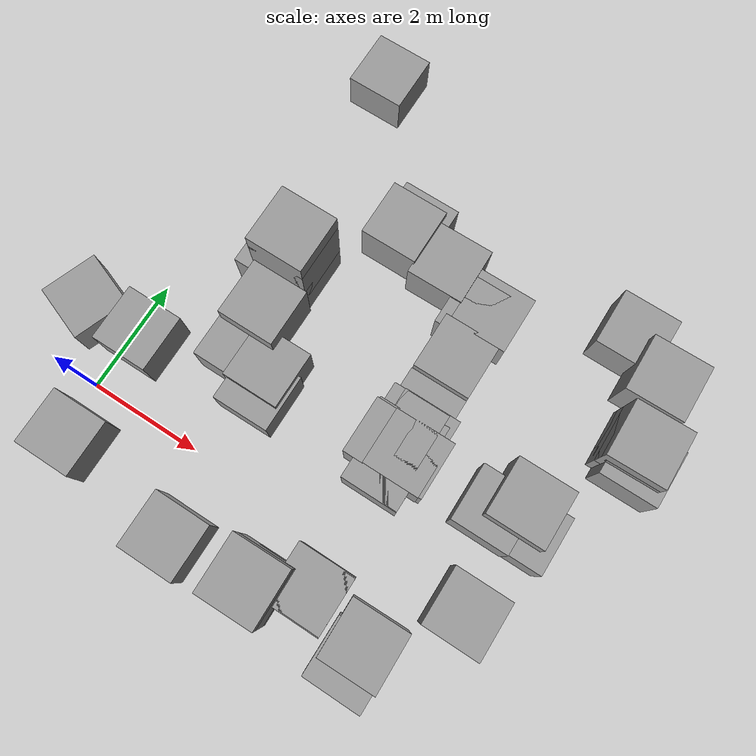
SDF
<sdf version='1.7'>
  <world name='default'>
    <light name='sun' type='directional'>
      <cast_shadows>1</cast_shadows>
      <pose>0 0 10 0 -0 0</pose>
      <diffuse>0.8 0.8 0.8 1</diffuse>
      <specular>0.2 0.2 0.2 1</specular>
      <attenuation>
        <range>1000</range>
        <constant>0.9</constant>
        <linear>0.01</linear>
        <quadratic>0.001</quadratic>
      </attenuation>
      <direction>-0.5 0.1 -0.9</direction>
      <spot>
        <inner_angle>0</inner_angle>
        <outer_angle>0</outer_angle>
        <falloff>0</falloff>
      </spot>
    </light>
    <model name='ground_plane'>
      <static>1</static>
      <link name='link'>
        <collision name='collision'>
          <geometry>
            <plane>
              <normal>0 0 1</normal>
              <size>100 100</size>
            </plane>
          </geometry>
          <surface>
            <contact>
              <collide_bitmask>65535</collide_bitmask>
              <ode/>
            </contact>
            <friction>
              <ode>
                <mu>100</mu>
                <mu2>50</mu2>
              </ode>
              <torsional>
                <ode/>
              </torsional>
            </friction>
            <bounce/>
          </surface>
          <max_contacts>10</max_contacts>
        </collision>
        <visual name='visual'>
          <cast_shadows>0</cast_shadows>
          <geometry>
            <plane>
              <normal>0 0 1</normal>
              <size>100 100</size>
            </plane>
          </geometry>
          <material>
            <script>
              <uri>file://media/materials/scripts/gazebo.material</uri>
              <name>Gazebo/Grey</name>
            </script>
          </material>
        </visual>
        <self_collide>0</self_collide>
        <enable_wind>0</enable_wind>
        <kinematic>0</kinematic>
      </link>
    </model>
    <gravity>0 0 -9.8</gravity>
    <magnetic_field>6e-06 2.3e-05 -4.2e-05</magnetic_field>
    <atmosphere type='adiabatic'/>
    <physics type='ode'>
      <max_step_size>0.001</max_step_size>
      <real_time_factor>1</real_time_factor>
      <real_time_update_rate>1000</real_time_update_rate>
    </physics>
    <scene>
      <ambient>0.4 0.4 0.4 1</ambient>
      <background>0.7 0.7 0.7 1</background>
      <shadows>1</shadows>
    </scene>
    <wind/>
    <spherical_coordinates>
      <surface_model>EARTH_WGS84</surface_model>
      <latitude_deg>0</latitude_deg>
      <longitude_deg>0</longitude_deg>
      <elevation>0</elevation>
      <heading_deg>0</heading_deg>
    </spherical_coordinates>
    <gui fullscreen='0'>
      <camera name='user_camera'>
        <pose>-2.70813 5.70495 19.0216 2e-06 1.5418 -1.5749</pose>
        <view_controller>orbit</view_controller>
        <projection_type>perspective</projection_type>
      </camera>
    </gui>
    <include>
      <uri>model://unit_box</uri>
      <name>dining_table</name>
      <pose>7.73000 4.80000 0.67500 0 0 1.58216</pose>
      <scale>0.88 0.57 0.05</scale>
    </include>
<include>
      <uri>model://unit_box</uri>
      <name>cabinet_0</name>
      <pose>7.95250 3.73250 0.05000 0 0 1.58508</pose>
      <scale>0.70 0.20 0.10</scale>
    </include>
<include>
      <uri>model://unit_box</uri>
      <name>cabinet_1</name>
      <pose>7.95250 3.73250 0.47000 0 0 1.58508</pose>
      <scale>0.70 0.20 0.02</scale>
    </include>
<include>
      <uri>model://unit_box</uri>
      <name>cabinet_2</name>
      <pose>7.95250 3.73250 0.76000 0 0 1.58508</pose>
      <scale>0.70 0.20 0.02</scale>
    </include>
<include>
      <uri>model://unit_box</uri>
      <name>side_table</name>
      <pose>6.89000 2.02500 0.74000 0 0 0.00000</pose>
      <scale>0.48 0.52 0.02</scale>
    </include>
<include>
      <uri>model://unit_box</uri>
      <name>low_table</name>
      <pose>3.90750 4.70500 0.38500 0 0 -3.13319</pose>
      <scale>1.19 0.66 0.03</scale>
    </include>
<include>
      <uri>model://unit_box</uri>
      <name>washing_machine</name>
      <pose>2.94000 4.85000 0.50000 0 0 3.14159</pose>
      <scale>0.60 0.54 1.00</scale>
    </include>
<include>
      <uri>model://unit_box</uri>
      <name>cup_board_0</name>
      <pose>1.73500 3.49000 0.41000 0 0 -1.57080</pose>
      <scale>0.82 0.33 0.82</scale>
    </include>
<include>
      <uri>model://unit_box</uri>
      <name>cup_board_1</name>
      <pose>1.73500 3.49000 1.08000 0 0 -1.57080</pose>
      <scale>0.82 0.33 0.02</scale>
    </include>
<include>
      <uri>model://unit_box</uri>
      <name>cup_board_2</name>
      <pose>1.73500 3.49000 1.43000 0 0 -1.57080</pose>
      <scale>0.82 0.33 0.02</scale>
    </include>
<include>
      <uri>model://unit_box</uri>
      <name>laundry_table</name>
      <pose>1.82000 2.45000 0.70500 0 0 -1.57080</pose>
      <scale>1.14 0.66 0.09</scale>
    </include>
<include>
      <uri>model://unit_box</uri>
      <name>sofa</name>
      <pose>2.41250 1.33500 0.21500 0 0 -3.13633</pose>
      <scale>1.90 0.98 0.43</scale>
    </include>
<include>
      <uri>model://unit_box</uri>
      <name>shelf_0</name>
      <pose>3.97750 -1.14250 0.05000 0 0 0.01351</pose>
      <scale>0.74 0.23 0.10</scale>
    </include>
<include>
      <uri>model://unit_box</uri>
      <name>shelf_1</name>
      <pose>3.97750 -1.14250 0.47000 0 0 0.01351</pose>
      <scale>0.74 0.23 0.02</scale>
    </include>
<include>
      <uri>model://unit_box</uri>
      <name>shelf_2</name>
      <pose>3.97750 -1.14250 0.70000 0 0 0.01351</pose>
      <scale>0.74 0.23 0.02</scale>
    </include>
<include>
      <uri>model://unit_box</uri>
      <name>shelf_3</name>
      <pose>3.97750 -1.14250 1.05000 0 0 0.01351</pose>
      <scale>0.74 0.23 0.02</scale>
    </include>
<include>
      <uri>model://unit_box</uri>
      <name>sink</name>
      <pose>5.90000 -0.99250 0.44000 0 0 0.01190</pose>
      <scale>0.84 0.54 0.88</scale>
    </include>
<include>
      <uri>model://unit_box</uri>
      <name>outside_collision1</name>
      <pose>-0.77750 1.07500 0.25000 0 0 2.78389</pose>
      <scale>2.20 1.12 0.50</scale>
    </include>
<include>
      <uri>model://unit_box</uri>
      <name>outside_collision2</name>
      <pose>1.19500 7.20000 0.25000 0 0 1.57080</pose>
      <scale>0.70 0.61 0.50</scale>
    </include>
<include>
      <uri>model://unit_box</uri>
      <name>dining_wall_1_</name>
      <pose>8.07000 3.53000 0.35000 0 0 1.57080</pose>
      <scale>3.60 0.10 0.70</scale>
    </include>
<include>
      <uri>model://unit_box</uri>
      <name>dining_wall_2_</name>
      <pose>5.00500 1.73000 0.35000 0 0 0.00000</pose>
      <scale>0.21 0.10 0.70</scale>
    </include>
<include>
      <uri>model://unit_box</uri>
      <name>dining_wall_3_</name>
      <pose>4.90000 2.06000 0.35000 0 0 1.57080</pose>
      <scale>0.66 0.10 0.70</scale>
    </include>
<include>
      <uri>model://unit_box</uri>
      <name>dining_wall_4_</name>
      <pose>7.03000 5.33000 0.35000 0 0 0.00000</pose>
      <scale>2.08 0.10 0.70</scale>
    </include>
<include>
      <uri>model://unit_box</uri>
      <name>dining_wall_5_</name>
      <pose>4.90000 4.38500 0.35000 0 0 1.57080</pose>
      <scale>1.89 0.10 0.70</scale>
    </include>
<include>
      <uri>model://unit_box</uri>
      <name>dining_wall_6_</name>
      <pose>7.09000 1.73000 0.35000 0 0 0.00000</pose>
      <scale>1.96 0.10 0.70</scale>
    </include>
<include>
      <uri>model://unit_box</uri>
      <name>living_wall_0_</name>
      <pose>4.79000 -0.76000 0.35000 0 0 1.57080</pose>
      <scale>1.08 0.10 0.70</scale>
    </include>
<include>
      <uri>model://unit_box</uri>
      <name>living_wall_1_</name>
      <pose>2.53500 -1.30000 0.35000 0 0 0.00000</pose>
      <scale>4.51 0.10 0.70</scale>
    </include>
<include>
      <uri>model://unit_box</uri>
      <name>living_wall_2_</name>
      <pose>0.28000 -0.88500 0.35000 0 0 1.57080</pose>
      <scale>0.83 0.10 0.70</scale>
    </include>
<include>
      <uri>model://unit_box</uri>
      <name>living_wall_3_</name>
      <pose>1.78000 1.74000 0.35000 0 0 0.00000</pose>
      <scale>3.00 0.10 0.70</scale>
    </include>
<include>
      <uri>model://unit_box</uri>
      <name>living_wall_4_</name>
      <pose>4.64000 1.74000 0.35000 0 0 0.00000</pose>
      <scale>0.30 0.10 0.70</scale>
    </include>
<include>
      <uri>model://unit_box</uri>
      <name>living_wall_5_</name>
      <pose>4.79000 1.37000 0.35000 0 0 1.57080</pose>
      <scale>0.74 0.10 0.70</scale>
    </include>
<include>
      <uri>model://unit_box</uri>
      <name>living_wall_6_</name>
      <pose>0.28000 1.08500 0.35000 0 0 1.57080</pose>
      <scale>1.31 0.10 0.70</scale>
    </include>
<include>
      <uri>model://unit_box</uri>
      <name>kitchen_wall_0_</name>
      <pose>4.95000 1.72000 0.35000 0 0 0.00000</pose>
      <scale>0.32 0.10 0.70</scale>
    </include>
<include>
      <uri>model://unit_box</uri>
      <name>kitchen_wall_1_</name>
      <pose>6.94000 0.19500 0.35000 0 0 1.57080</pose>
      <scale>3.05 0.10 0.70</scale>
    </include>
<include>
      <uri>model://unit_box</uri>
      <name>kitchen_wall_2_</name>
      <pose>5.86500 -1.33000 0.35000 0 0 0.00000</pose>
      <scale>2.15 0.10 0.70</scale>
    </include>
<include>
      <uri>model://unit_box</uri>
      <name>kitchen_wall_3_</name>
      <pose>4.79000 -0.77500 0.35000 0 0 1.57080</pose>
      <scale>1.11 0.10 0.70</scale>
    </include>
<include>
      <uri>model://unit_box</uri>
      <name>kitchen_wall_4_</name>
      <pose>6.52500 1.72000 0.35000 0 0 0.00000</pose>
      <scale>0.83 0.10 0.70</scale>
    </include>
<include>
      <uri>model://unit_box</uri>
      <name>kitchen_wall_5_</name>
      <pose>4.79000 1.36000 0.35000 0 0 1.57080</pose>
      <scale>0.72 0.10 0.70</scale>
    </include>
<include>
      <uri>model://unit_box</uri>
      <name>laundry_room_wall_0_</name>
      <pose>2.36000 1.71000 0.35000 0 0 0.00000</pose>
      <scale>1.84 0.10 0.70</scale>
    </include>
<include>
      <uri>model://unit_box</uri>
      <name>laundry_room_wall_1_</name>
      <pose>1.44000 3.37000 0.35000 0 0 1.57080</pose>
      <scale>3.32 0.10 0.70</scale>
    </include>
<include>
      <uri>model://unit_box</uri>
      <name>laundry_room_wall_2_</name>
      <pose>3.07500 5.03000 0.35000 0 0 0.00000</pose>
      <scale>3.27 0.10 0.70</scale>
    </include>
<include>
      <uri>model://unit_box</uri>
      <name>laundry_room_wall_3_</name>
      <pose>4.71000 2.05000 0.35000 0 0 1.57080</pose>
      <scale>0.68 0.10 0.70</scale>
    </include>
<include>
      <uri>model://unit_box</uri>
      <name>laundry_room_wall_4_</name>
      <pose>4.71000 4.23500 0.35000 0 0 1.57080</pose>
      <scale>1.59 0.10 0.70</scale>
    </include>
<include>
      <uri>model://unit_box</uri>
      <name>laundry_room_wall_5_</name>
      <pose>4.60000 1.71000 0.35000 0 0 0.00000</pose>
      <scale>0.22 0.10 0.70</scale>
    </include>
<include>
      <uri>model://unit_box</uri>
      <name>inter_room_wall_0_</name>
      <pose>4.80500 2.39000 0.35000 0 0 3.14159</pose>
      <scale>0.19 0.10 0.70</scale>
    </include>
<include>
      <uri>model://unit_box</uri>
      <name>inter_room_wall_1_</name>
      <pose>4.80500 3.44000 0.35000 0 0 3.14159</pose>
      <scale>0.19 0.10 0.70</scale>
    </include>
  </world>
</sdf>

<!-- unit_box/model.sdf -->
<sdf version='1.7'>
  <model name='unit_box'>
    <link name='link'>
      <inertial>
        <mass>1</mass>
        <inertia>
          <ixx>0.166667</ixx>
          <ixy>0</ixy>
          <ixz>0</ixz>
          <iyy>0.166667</iyy>
          <iyz>0</iyz>
          <izz>0.166667</izz>
        </inertia>
        <pose>0 0 0 0 -0 0</pose>
      </inertial>
      <self_collide>0</self_collide>
      <enable_wind>0</enable_wind>
      <pose>0 0 0 0 -0 0</pose>
      <gravity>1</gravity>
      <kinematic>0</kinematic>
      <visual name='visual'>
        <geometry>
          <box>
            <size>1 1 1</size>
          </box>
        </geometry>
        <material>
          <script>
            <name>Gazebo/Grey</name>
            <uri>file://media/materials/scripts/gazebo.material</uri>
          </script>
          <shader type='pixel'>
            <normal_map>__default__</normal_map>
          </shader>
          <ambient>0.8 0.8 0.8 1</ambient>
          <diffuse>0.7 0.7 0.7 1</diffuse>
          <specular>0.01 0.01 0.01 1</specular>
          <emissive>0 0 0 1</emissive>
        </material>
        <pose>0 0 0 0 -0 0</pose>
        <transparency>0</transparency>
        <cast_shadows>1</cast_shadows>
      </visual>
      <collision name='collision'>
        <laser_retro>0</laser_retro>
        <max_contacts>10</max_contacts>
        <pose>0 0 0 0 -0 0</pose>
        <geometry>
          <box>
            <size>1 1 1</size>
          </box>
        </geometry>
        <surface>
          <friction>
            <ode>
              <mu>1</mu>
              <mu2>1</mu2>
              <fdir1>0 0 0</fdir1>
              <slip1>0</slip1>
              <slip2>0</slip2>
            </ode>
            <torsional>
              <coefficient>1</coefficient>
              <patch_radius>0</patch_radius>
              <surface_radius>0</surface_radius>
              <use_patch_radius>1</use_patch_radius>
              <ode>
                <slip>0</slip>
              </ode>
            </torsional>
          </friction>
          <bounce>
            <restitution_coefficient>0</restitution_coefficient>
            <threshold>1e+06</threshold>
          </bounce>
          <contact>
            <collide_without_contact>0</collide_without_contact>
            <collide_without_contact_bitmask>1</collide_without_contact_bitmask>
            <collide_bitmask>1</collide_bitmask>
            <ode>
              <soft_cfm>0</soft_cfm>
              <soft_erp>0.2</soft_erp>
              <kp>1e+13</kp>
              <kd>1</kd>
              <max_vel>0.01</max_vel>
              <min_depth>0</min_depth>
            </ode>
            <bullet>
              <split_impulse>1</split_impulse>
              <split_impulse_penetration_threshold>-0.01</split_impulse_penetration_threshold>
              <soft_cfm>0</soft_cfm>
              <soft_erp>0.2</soft_erp>
              <kp>1e+13</kp>
              <kd>1</kd>
            </bullet>
          </contact>
        </surface>
      </collision>
    </link>
    <static>0</static>
    <allow_auto_disable>1</allow_auto_disable>
  </model>
</sdf>
